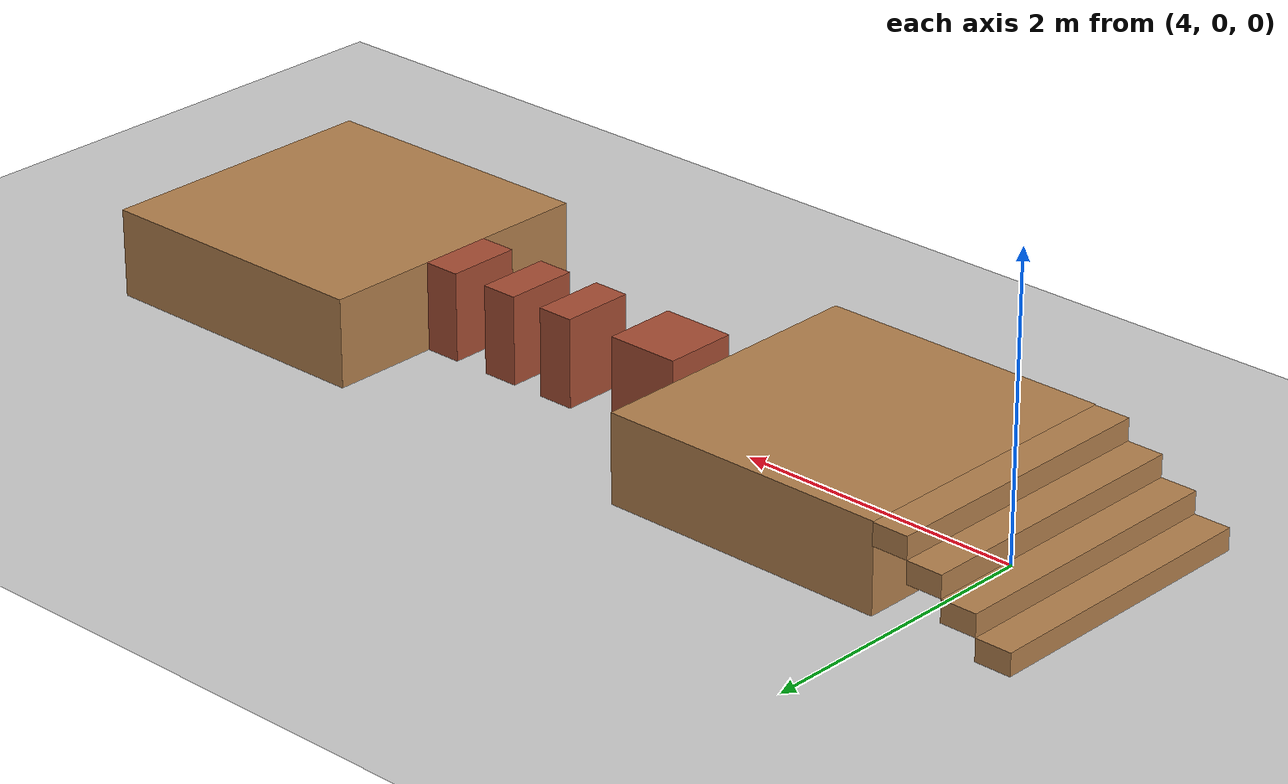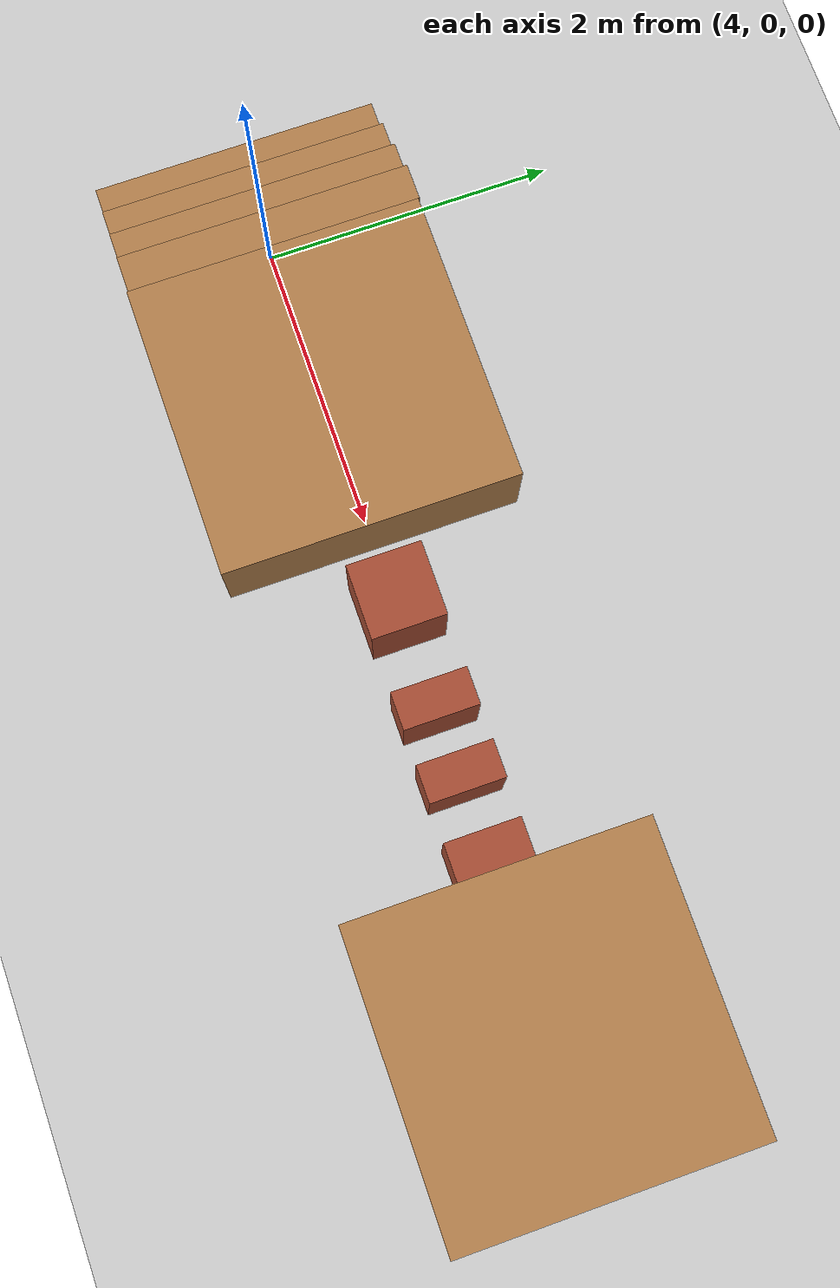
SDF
<?xml version="1.0"?>
<sdf version="1.5">
  <world name="default">

    <physics type="ode">
      <max_step_size>0.001</max_step_size>
      <real_time_factor>1</real_time_factor>
      <real_time_update_rate>1000</real_time_update_rate>
      <gravity>0 0 -9.81</gravity>
      <ode>
        <solver>
          <type>quick</type>
          <iters>50</iters>
          <sor>1.3</sor>
        </solver>
        <constraints>
          <cfm>0.0</cfm>
          <erp>0.2</erp>
          <contact_max_correcting_vel>10.0</contact_max_correcting_vel>
          <contact_surface_layer>0.001</contact_surface_layer>
        </constraints>
      </ode>
    </physics>

    <scene>
      <sky>
        <clouds>
          <speed>12</speed>
        </clouds>
      </sky>
    </scene>
    <!-- A global light source -->
    <include>
      <uri>model://sun</uri>
    </include>
    <!-- A ground plane -->
    <include>
      <uri>model://ground_plane</uri>
    </include>
    <!-- environment blocks, obstacles or stairs -->
    <model name="static_environment">
      <static>true</static>
      <link name="floor3">
        <pose>5.2 0 0.3 0 0 0</pose>
        <collision name="floor3_collision">
          <geometry>
            <box>
              <size>2 2 0.6</size>
            </box>
          </geometry>
        </collision>
        <visual name="floor3_visual">
          <geometry>
            <box>
              <size>2 2 0.6</size>
            </box>
          </geometry>
          <material>
            <script>
              <uri>file://media/materials/scripts/gazebo.material</uri>
              <name>Gazebo/Wood</name>
            </script>
            <ambient>1 1 1 1</ambient>
          </material>
        </visual>
      </link>

    </model>

    <model name="static_environment2">
      <static>true</static>
      <link name="floor4">
        <pose>9.475 0 0.3 0 0 0</pose>
        <collision name="floor3_collision">
          <geometry>
            <box>
              <size>2 2 0.6</size>
            </box>
          </geometry>
        </collision>
        <visual name="floor3_visual">
          <geometry>
            <box>
              <size>2 2 0.6</size>
            </box>
          </geometry>
          <material>
            <script>
              <uri>file://media/materials/scripts/gazebo.material</uri>
              <name>Gazebo/Wood</name>
            </script>
            <ambient>1 1 1 1</ambient>
          </material>
        </visual>
      </link>

    </model>

    <model name='stairs'>
      <pose frame=''>3.7 0.009 0 0 -0 0</pose>
      <link name='Stairs_1'>
        <visual name='Stairs_1_Visual_0'>
          <pose frame=''>-0.375 -0 0.075 0 -0 1.5708</pose>
          <geometry>
            <box>
              <size>2 0.25 0.15</size>
            </box>
          </geometry>
          <material>
            <script>
              <uri>file://media/materials/scripts/gazebo.material</uri>
              <name>Gazebo/Wood</name>
            </script>
            <ambient>1 1 1 1</ambient>
          </material>
          <meta>
            <layer>0</layer>
          </meta>
        </visual>
        <collision name='Stairs_1_Collision_0'>
          <geometry>
            <box>
              <size>2 0.25 0.15</size>
            </box>
          </geometry>
          <pose frame=''>-0.375 -0 0.075 0 -0 1.5708</pose>
        </collision>
        <visual name='Stairs_1_Visual_1'>
          <pose frame=''>-0.125 -0 0.225 0 -0 1.5708</pose>
          <geometry>
            <box>
              <size>2 0.25 0.15</size>
            </box>
          </geometry>
          <material>
            <script>
              <uri>file://media/materials/scripts/gazebo.material</uri>
              <name>Gazebo/Wood</name>
            </script>
            <ambient>1 1 1 1</ambient>
          </material>
          <meta>
            <layer>0</layer>
          </meta>
        </visual>
        <collision name='Stairs_1_Collision_1'>
          <geometry>
            <box>
              <size>2 0.25 0.15</size>
            </box>
          </geometry>
          <pose frame=''>-0.125 -0 0.225 0 -0 1.5708</pose>
        </collision>
        <visual name='Stairs_1_Visual_2'>
          <pose frame=''>0.125 0 0.375 0 -0 1.5708</pose>
          <geometry>
            <box>
              <size>2 0.25 0.15</size>
            </box>
          </geometry>
          <material>
            <script>
              <uri>file://media/materials/scripts/gazebo.material</uri>
              <name>Gazebo/Wood</name>
            </script>
            <ambient>1 1 1 1</ambient>
          </material>
          <meta>
            <layer>0</layer>
          </meta>
        </visual>
        <collision name='Stairs_1_Collision_2'>
          <geometry>
            <box>
              <size>2 0.25 0.15</size>
            </box>
          </geometry>
          <pose frame=''>0.125 0 0.375 0 -0 1.5708</pose>
        </collision>
        <visual name='Stairs_1_Visual_3'>
          <pose frame=''>0.375 0 0.525 0 -0 1.5708</pose>
          <geometry>
            <box>
              <size>2 0.25 0.15</size>
            </box>
          </geometry>
          <material>
            <script>
              <uri>file://media/materials/scripts/gazebo.material</uri>
              <name>Gazebo/Wood</name>
            </script>
            <ambient>1 1 1 1</ambient>
          </material>
          <meta>
            <layer>0</layer>
          </meta>
        </visual>
        <collision name='Stairs_1_Collision_3'>
          <geometry>
            <box>
              <size>2 0.25 0.15</size>
            </box>
          </geometry>
          <pose frame=''>0.375 0 0.525 0 -0 1.5708</pose>
        </collision>
      </link>
      <static>1</static>
    </model>

    <model name='stepping stone right'>
      <pose frame=''>6.8 .0 0 0 -0 0</pose>
      <link name='stone_1'>
        <visual name='stone_1_Visual_0'>
          <pose frame=''>-0.15 -0 0.3 0 -0 1.5708</pose>
          <geometry>
            <box>
              <size>0.5 0.5 0.6</size>
            </box>
          </geometry>
          <material>
            <script>
              <uri>file://media/materials/scripts/gazebo.material</uri>
              <name>Gazebo/Bricks</name>
            </script>
            <ambient>1 1 1 1</ambient>
          </material>
          <meta>
            <layer>0</layer>
          </meta>
        </visual>
        <collision name='stone_1_Collision_0'>
          <geometry>
            <box>
              <size>0.5 0.5 0.6</size>
            </box>
          </geometry>
          <pose frame=''>-0.15 -0 0.3 0 -0 1.5708</pose>
        </collision>
        <visual name='stone_1_Visual_1'>
          <pose frame=''>0.575 -0 0.3 0 -0 1.5708</pose>
          <geometry>
            <box>
              <size>0.5 0.25 0.6</size>
            </box>
          </geometry>
          <material>
            <script>
              <uri>file://media/materials/scripts/gazebo.material</uri>
              <name>Gazebo/Bricks</name>
            </script>
            <ambient>1 1 1 1</ambient>
          </material>
          <meta>
            <layer>0</layer>
          </meta>
        </visual>
        <collision name='stone_1_Collision_1'>
          <geometry>
            <box>
              <size>0.5 0.25 0.6</size>
            </box>
          </geometry>
          <pose frame=''>0.575 -0 0.3 0 -0 1.5708</pose>
        </collision>
        <visual name='stone_1_Visual_2'>
          <pose frame=''>1.05 0 0.3 0 -0 1.5708</pose>
          <geometry>
            <box>
              <size>0.5 0.25 0.6</size>
            </box>
          </geometry>
          <material>
            <script>
              <uri>file://media/materials/scripts/gazebo.material</uri>
              <name>Gazebo/Bricks</name>
            </script>
            <ambient>1 1 1 1</ambient>
          </material>
          <meta>
            <layer>0</layer>
          </meta>
        </visual>
        <collision name='stone_1_Collision_2'>
          <geometry>
            <box>
              <size>0.5 0.25 0.6</size>
            </box>
          </geometry>
          <pose frame=''>1.05 0 0.3 0 -0 1.5708</pose>
        </collision>
        <visual name='stone_1_Visual_3'>
          <pose frame=''>1.55 0 0.3 0 -0 1.5708</pose>
          <geometry>
            <box>
              <size>0.5 0.25 0.6</size>
            </box>
          </geometry>
          <material>
            <script>
              <uri>file://media/materials/scripts/gazebo.material</uri>
              <name>Gazebo/Bricks</name>
            </script>
            <ambient>1 1 1 1</ambient>
          </material>
          <meta>
            <layer>0</layer>
          </meta>
        </visual>
        <collision name='stone_1_Collision_3'>
          <geometry>
            <box>
              <size>0.5 0.25 0.6</size>
            </box>
          </geometry>
          <pose frame=''>1.55 0 0.3 0 -0 1.5708</pose>
        </collision>
      </link>
      <static>1</static>
    </model>

  </world>
</sdf>
